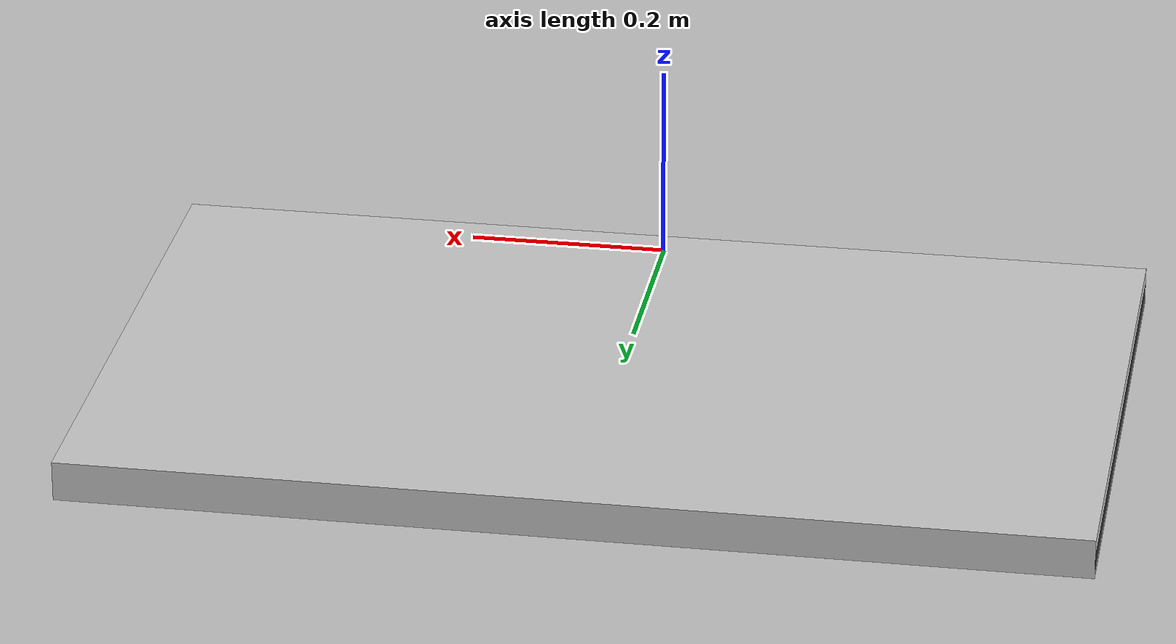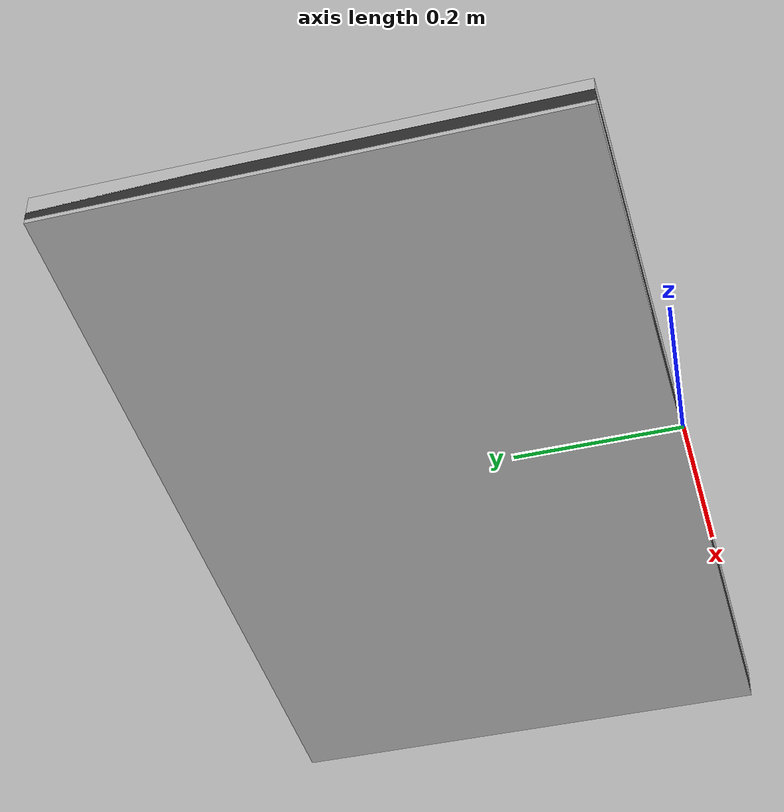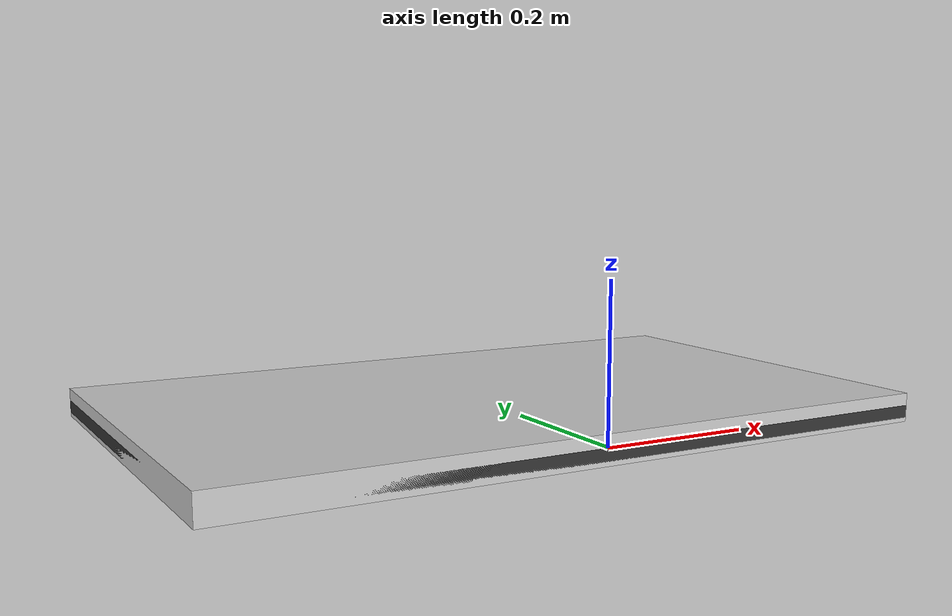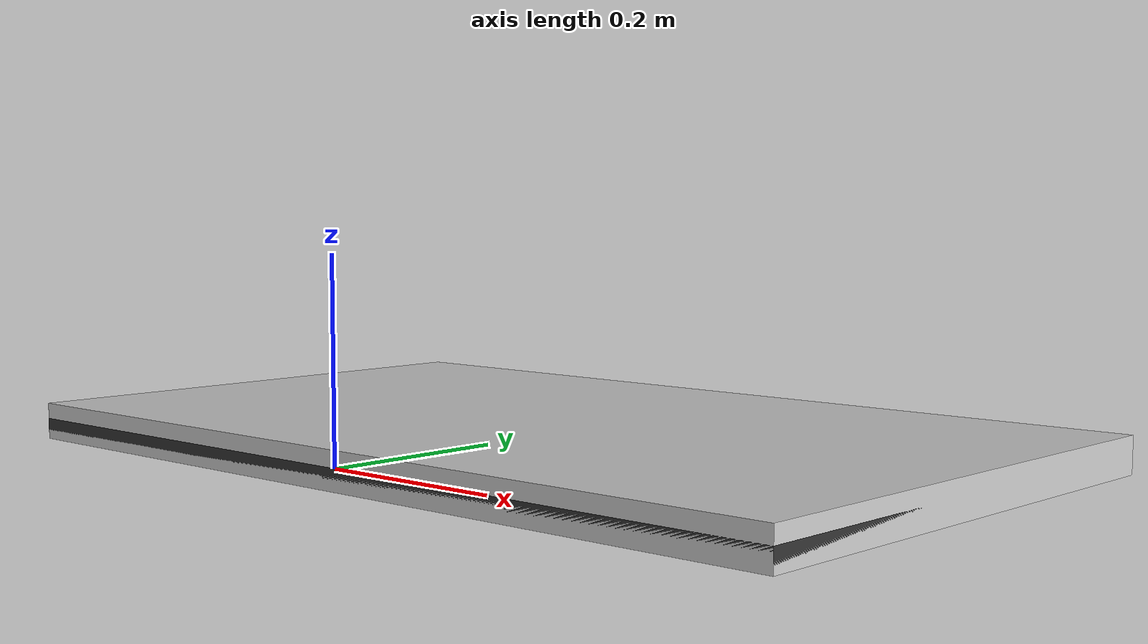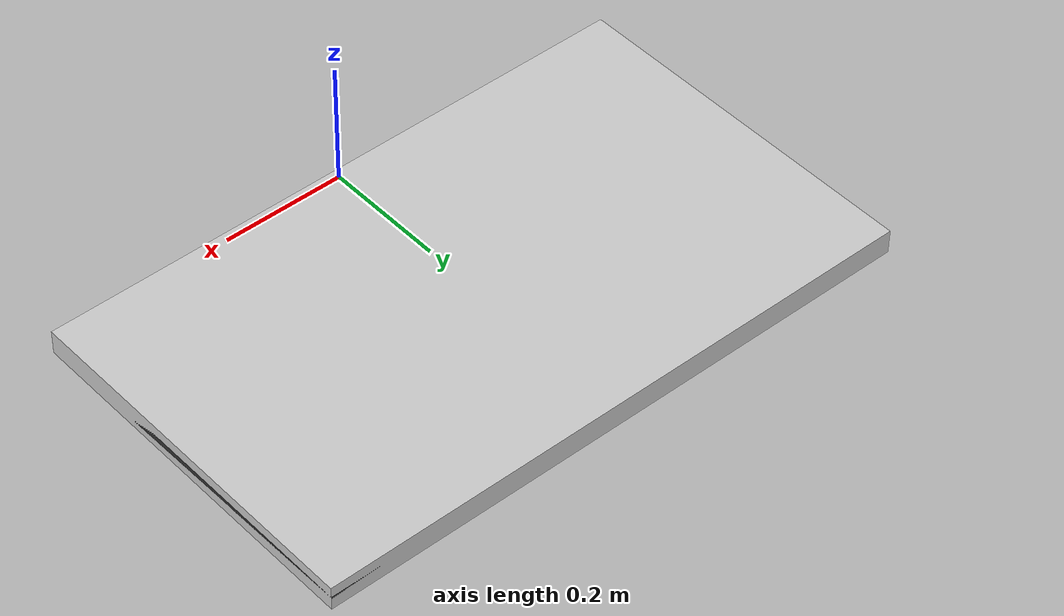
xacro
<?xml version="0.0" ?>
<robot name="table.urdf">

  <xacro:macro name="top_panel">
    <geometry>
      <box size="1 0.6 0.017"/>
    </geometry>
    <material name="dark"/>
  </xacro:macro>

  <xacro:macro name="top_base">
    <geometry>
      <box size="1 0.6 0.04"/>
    </geometry>
    <material name="light"/>
  </xacro:macro>

  <xacro:macro name="leg">
    <geometry>
      <box size="0.04 0.04 0.823"/>
    </geometry>
    <material name="light"/>
  </xacro:macro>

  <material name="dark">
    <color rgba="0.2 0.2 0.2 1."/>
  </material>
  <material name="light">
    <color rgba="0.8 0.8 0.8 1."/>
  </material>

  <link name="baseLink">
    <contact>
      <lateral_friction value="1.0"/>
    </contact>
    <inertial>
      <origin rpy="0 0 0" xyz="0 0 0"/>
      <mass value=".0"/>
      <inertia ixx="1" ixy="0" ixz="0" iyy="1" iyz="0" izz="1"/>
    </inertial>
    <visual>
      <origin rpy="0 0 0" xyz="0 0.3 -0.0085"/>
      <xacro:top_panel/>
    </visual>
    <visual>
      <origin rpy="0 0 0" xyz="0 0.3 -0.00285"/>
      <xacro:top_base/>
    </visual>
  </link>
</robot>
